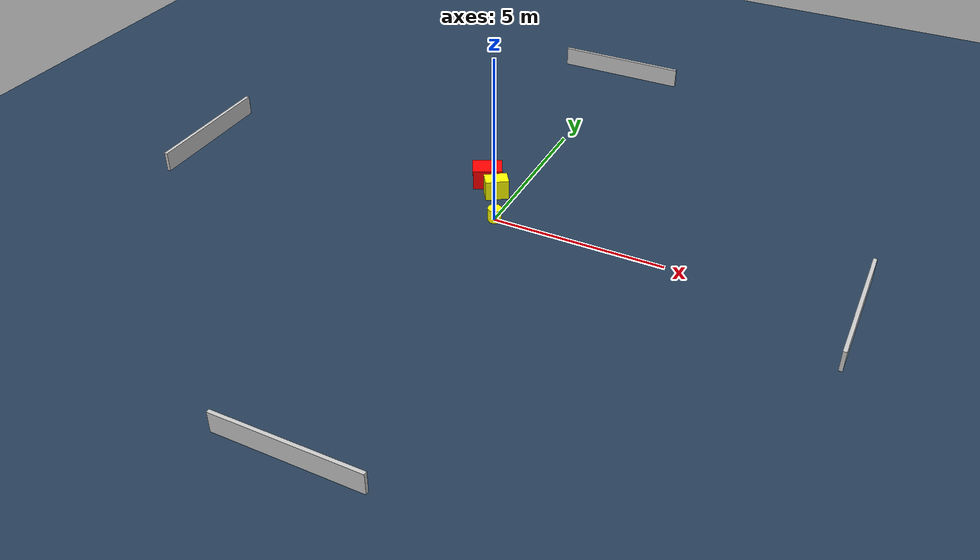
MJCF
<?xml version="1.0" ?>
<mujoco model="generated_environment">
  <option timestep="0.01" integrator="RK4" cone="elliptic"/>
  <default>
    <geom density="1"/>
  </default>
  <asset>
    <texture builtin="gradient" height="3072" name="skybox" rgb1="0.3 0.5 0.7" rgb2="0 0 0" type="skybox" width="512"/>
    <texture builtin="checker" height="300" name="groundplane" rgb1="0.2 0.3 0.4" rgb2="0.1 0.2 0.3" type="2d" width="300"/>
    <material name="groundplane" reflectance="0.2" texrepeat="5 5" texture="groundplane"/>
  </asset>
  <worldbody>
    <light dir="0 0 -1" directional="true" pos="0 0 1.5"/>
    <geom condim="3" friction="0.5 0.005 0.001" material="groundplane" name="floor" pos="0 0 0" size="0 0 0.05" type="plane"/>
    <body name="walls">
      <geom name="wall_1" condim="4" pos="-10.0 0.0 0.3" rgba="0.800000011920929 0.800000011920929 0.800000011920929 1.0" size="0.05 2.0 0.3" type="box"/>
      <geom name="wall_2" condim="4" pos="10.0 0.0 0.3" rgba="0.800000011920929 0.800000011920929 0.800000011920929 1.0" size="0.05 2.0 0.3" type="box"/>
      <geom name="wall_3" condim="4" pos="0.0 -10.0 0.3" rgba="0.800000011920929 0.800000011920929 0.800000011920929 1.0" size="2.0 0.05 0.3" type="box"/>
      <geom name="wall_4" condim="4" pos="0.0 10.0 0.3" rgba="0.800000011920929 0.800000011920929 0.800000011920929 1.0" size="2.0 0.05 0.3" type="box"/>
    </body>
    <body name="robot">
      <joint name="joint_x" type="slide" pos="0 0 0" axis="1 0 0"/>
      <joint name="joint_y" type="slide" pos="0 0 0" axis="0 1 0"/>
      <geom name="robot" type="cylinder" pos="0.0 0.0 0.2" size="0.2 0.2 0.0" mass="5.0" friction="1.0 0.005 0.0001" condim="4" rgba="1.0 1.0 0.0 1.0"/>
    </body>
    <body name="obstacle_1_movable">
      <geom name="obstacle_1_movable" condim="4" pos="-0.5143202506536217 1.1482330460014054 0.3" euler="0 0 123.72001164420705" friction="0.0 0.005 0.001" rgba="1.0 1.0 0.0 1.0" size="0.23041517142544554 0.3427682048424362 0.3" type="box" mass="0.1"/>
      <joint type="free"/>
    </body>
    <body name="obstacle_2_static">
      <geom name="obstacle_2_static" condim="4" pos="-1.0372659143397684 1.6251476826721047 0.3" euler="0 0 297.64151513585966" friction="0.0 0.005 0.001" rgba="1.0 0.0 0.0 1.0" size="0.3264695338222744 0.4327826145391493 0.3" type="box"/>
    </body>
  </worldbody>
  <actuator>
    <motor name="actuator_x" joint="joint_x" gear="1" ctrlrange="-1 1"/>
    <motor name="actuator_y" joint="joint_y" gear="1" ctrlrange="-1 1"/>
  </actuator>
</mujoco>
